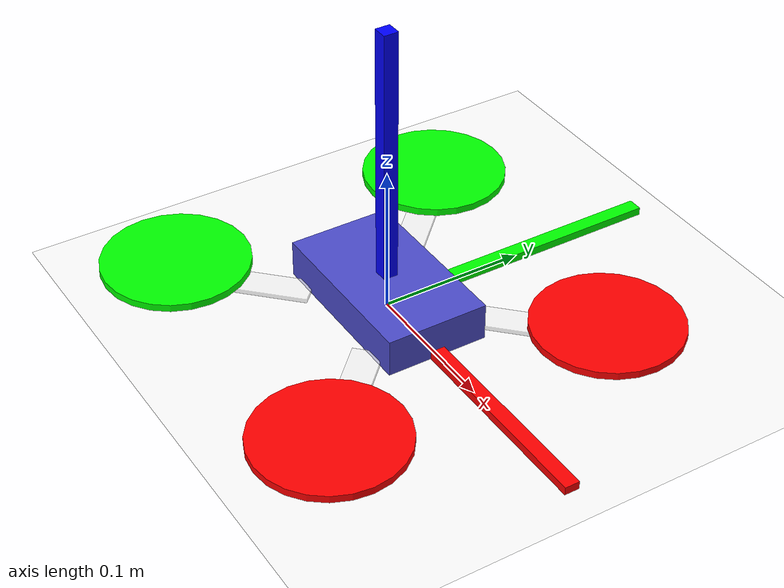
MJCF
<!-- written by Inkyu Sa, enddl22@gmail.com -->

<mujoco model="quadrotor0">
    <compiler inertiafromgeom="true" coordinate="local"/>
    <option timestep="0.001" gravity="0 0 -9.81" density="1" viscosity="1e-5" />
    <worldbody>
        <geom name="floor" pos="0 0 0" size="200 200 .2" type="plane"  conaffinity="1" rgba="1 1 1 1" condim="3"/>
        <body name="quadrotor" pos="0 0 0">
            <geom name="core" type="box" pos="0 0 0" quat = "1. 0. 0. 0" size="0.06 0.035 0.025"  rgba="0.3 0.3 0.8 1" mass = ".2"/>

            <geom name="a00" type="box" pos=".071 0.071 0.0" size="0.05 0.01 0.0025"  quat = ".924 0.0 0.0 0.383" rgba="1 1 1 0.7" mass = ".025"/>
            <geom name="a10" type="box" pos=".071 -0.071 0.0" size="0.05 0.01 0.0025"  quat = ".383 0.0 0.0 0.924" rgba="1 1 1 0.7" mass = ".025"/>
            <geom name="a20" type="box" pos="-0.071 -0.071 0.0" size="0.05 0.01 0.0025"  quat = "-.383 0.0 0.0 0.924" rgba="1 1 1 0.7" mass = ".025"/>
            <geom name="a30" type="box" pos="-.071 0.071 0.0" size="0.05 0.01 0.0025"  quat = ".924 0.0 0.0 -0.383" rgba="1 1 1 0.7" mass = ".025"/>

            <joint name="root"   type="free" damping="0" armature="0" pos="0 0 0" />

            <!-- Actuator sites to attach actuators, make it invisible -->
            <site name="thrust" type="box" pos="0 0 0"  size="0.035 0.035 0.035"  quat = "1.0 0.0 0.0 0." rgba="0 1 1 0" />
            <site name="rateX"  type="box" pos="0 0 0" quat = "1. 0. 0. 0."  size="0.06 0.035 0.025" rgba="0 1 1 0"/>
            <site name="rateY"  type="box" pos="0 0 0" quat = "1. 0. 0. 0."  size="0.06 0.035 0.025" rgba="0 1 1 0"/>
            <site name="rateZ"  type="box" pos="0 0 0" quat = "1. 0. 0. 0."  size="0.06 0.035 0.025" rgba="0 1 1 0"/>

            <!-- Thruster geometries for collisions since site's are excluded from collision checking -->
            <geom name="thruster0" type="cylinder" pos=" 0.1  0.1  0.01" size="0.05 0.0025"  quat = "1.0 0.0 0.0 0." rgba="1 0.0 0.0 1" mass = ".025"/>
            <geom name="thruster1" type="cylinder" pos=" 0.1 -0.1  0.01" size="0.05 0.0025"  quat = "1.0 0.0 0.0 0." rgba="1 0.0 0.0 1" mass = ".025"/>
            <geom name="thruster2" type="cylinder" pos="-0.1 -0.1  0.01" size="0.05 0.0025"  quat = "1.0 0.0 0.0 0." rgba="0 1 0 1" mass = ".025"/>
            <geom name="thruster3" type="cylinder" pos="-0.1  0.1  0.01" size="0.05 0.0025"  quat = "1.0 0.0 0.0 0." rgba="0 1 0 1" mass = ".025"/>

            <!-- Visualization of the coordinate frame -->
            <site name="qcX" type="box" pos="0.1 0.0 0.0" size="0.1 0.005 0.005"  quat = " 1.000  0.0  0.0    0."     rgba="1 0 0 1" />
            <site name="qcY" type="box" pos="0.0 0.1 0.0" size="0.1 0.005 0.005"  quat = " 0.707  0.0  0.0    0.707"  rgba="0 1 0 1" />
            <site name="qcZ" type="box" pos="0.0 0.0 0.1" size="0.1 0.005 0.005"  quat = "-0.707  0.0  0.707  0."     rgba="0 0 1 1" />
        </body>
    </worldbody>
    <actuator>
        <motor ctrllimited="true" ctrlrange="0.0 7.0" gear="0  0. 1. 0. 0. 0." site="thrust"/>
        <velocity ctrllimited="true" ctrlrange="-1 1" gear="0. 0. 0. 1. 0. 0." kv="0.1" site="rateX"/>
        <velocity ctrllimited="true" ctrlrange="-1 1" gear="0. 0. 0. 0. 1. 0." kv="0.1" site="rateY"/>
        <velocity ctrllimited="true" ctrlrange="-1 1" gear="0. 0. 0. 0. 0. 1." kv="0.1" site="rateZ"/>
    </actuator>
</mujoco>
